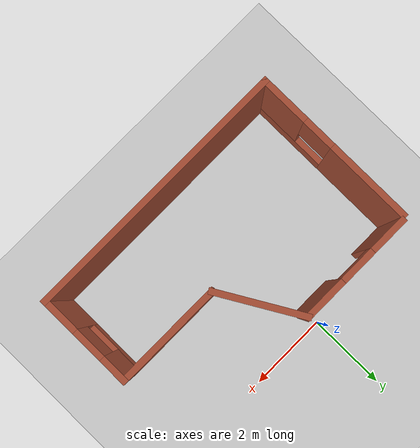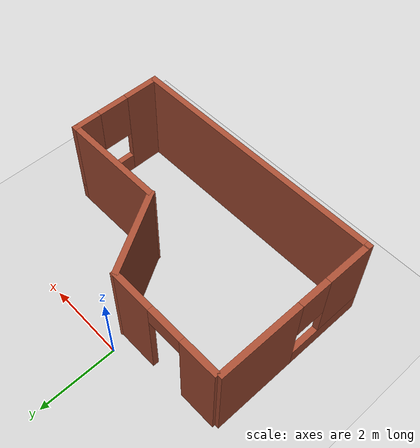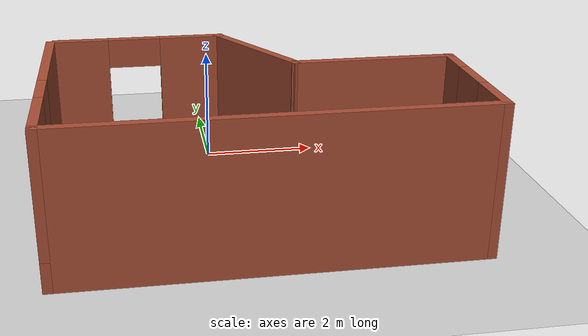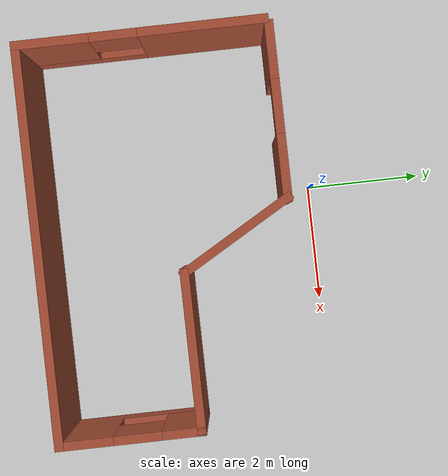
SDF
<sdf version="1.6">
 <world name="default">
  <light name="sun" type="directional">
   <pose>0 0 10 0 -0 0</pose>
   <diffuse>0.8 0.8 0.8 1</diffuse>
   <specular>0.2 0.2 0.2 1</specular>
   <attenuation>
    <range>1000</range>
    <constant>0.9</constant>
    <linear>0.01</linear>
    <quadratic>0.001</quadratic>
   </attenuation>
   <direction>-0.5 0.1 -0.9</direction>
  </light>
  <model name="ground_plane">
   <static>1</static>
   <link name="link">
    <collision name="collision">
     <geometry><plane><normal>0 0 1</normal><size>100 100</size></plane></geometry>
     <surface>
      <contact><collide_bitmask>65535</collide_bitmask></contact>
      <friction><ode><mu>100</mu><mu2>50</mu2></ode></friction>
     </surface>
    </collision>
    <visual name="visual">
     <cast_shadows>0</cast_shadows>
     <geometry><plane><normal>0 0 1</normal><size>100 100</size></plane></geometry>
     <material>
      <script><uri>file://media/materials/scripts/gazebo.material</uri><name>Gazebo/Grey</name></script>
     </material>
    </visual>
   </link>
  </model>
  <gravity>0 0 -9.8</gravity>
  <magnetic_field>6e-06 2.3e-05 -4.2e-05</magnetic_field>
  <atmosphere type="adiabatic"/>
  <physics name="default_physics" default="0" type="ode">
   <max_step_size>0.001</max_step_size>
   <real_time_factor>1</real_time_factor>
   <real_time_update_rate>1000</real_time_update_rate>
  </physics>
  <scene><ambient>0.4 0.4 0.4 1</ambient><background>0.7 0.7 0.7 1</background><shadows>1</shadows></scene>
  <audio><device>default</device></audio>
  <spherical_coordinates>
   <surface_model>EARTH_WGS84</surface_model>
   <latitude_deg>0</latitude_deg>
   <longitude_deg>0</longitude_deg>
   <elevation>0</elevation>
   <heading_deg>0</heading_deg>
  </spherical_coordinates>
  <model name="room">
   <pose>0.536972 -2.55151 0 0 -0 0</pose>
   <link name="Wall_0">
    <pose>-3.3 -0.048053 0 0 -0 -1.5708</pose>
    <visual name="Wall_0_Visual_0">
     <pose>-1.04294 0 1.25 0 -0 0</pose>
     <geometry><box><size>2.16412 0.15 2.5</size></box></geometry>
     <material>
      <script><uri>file://media/materials/scripts/gazebo.material</uri><name>Gazebo/Bricks</name></script>
      <ambient>1 1 1 1</ambient>
     </material>
     <meta><layer>0</layer></meta>
    </visual>
    <collision name="Wall_0_Collision_0">
     <geometry><box><size>2.16412 0.15 2.5</size></box></geometry>
     <pose>-1.04294 0 1.25 0 -0 0</pose>
    </collision>
    <visual name="Wall_0_Visual_1">
     <pose>1.08206 0 0.25 0 -0 0</pose>
     <geometry><box><size>2.08588 0.15 0.5</size></box></geometry>
     <material>
      <script><uri>file://media/materials/scripts/gazebo.material</uri><name>Gazebo/Bricks</name></script>
      <ambient>1 1 1 1</ambient>
     </material>
     <meta><layer>0</layer></meta>
    </visual>
    <collision name="Wall_0_Collision_1">
     <geometry><box><size>2.08588 0.15 0.5</size></box></geometry>
     <pose>1.08206 0 0.25 0 -0 0</pose>
    </collision>
    <visual name="Wall_0_Visual_2">
     <pose>1.48206 0 1.5 0 -0 0</pose>
     <geometry><box><size>1.28588 0.15 2</size></box></geometry>
     <material>
      <script><uri>file://media/materials/scripts/gazebo.material</uri><name>Gazebo/Bricks</name></script>
      <ambient>1 1 1 1</ambient>
     </material>
     <meta><layer>0</layer></meta>
    </visual>
    <collision name="Wall_0_Collision_2">
     <geometry><box><size>1.28588 0.15 2</size></box></geometry>
     <pose>1.48206 0 1.5 0 -0 0</pose>
    </collision>
    <visual name="Wall_0_Visual_3">
     <pose>0.439118 0 1.9 0 -0 0</pose>
     <geometry><box><size>0.8 0.15 1.2</size></box></geometry>
     <material>
      <script><uri>file://media/materials/scripts/gazebo.material</uri><name>Gazebo/Bricks</name></script>
      <ambient>1 1 1 1</ambient>
     </material>
     <meta><layer>0</layer></meta>
    </visual>
    <collision name="Wall_0_Collision_3">
     <geometry><box><size>0.8 0.15 1.2</size></box></geometry>
     <pose>0.439118 0 1.9 0 -0 0</pose>
    </collision>
   </link>
   <link name="Wall_1">
    <collision name="Wall_1_Collision">
     <geometry><box><size>6.75 0.15 2.5</size></box></geometry>
     <pose>0 0 1.25 0 -0 0</pose>
    </collision>
    <visual name="Wall_1_Visual">
     <pose>0 0 1.25 0 -0 0</pose>
     <geometry><box><size>6.75 0.15 2.5</size></box></geometry>
     <material>
      <script><uri>file://media/materials/scripts/gazebo.material</uri><name>Gazebo/Bricks</name></script>
      <ambient>1 1 1 1</ambient>
     </material>
     <meta><layer>0</layer></meta>
    </visual>
    <pose>0 -2.09805 0 0 -0 0</pose>
   </link>
   <link name="Wall_2">
    <pose>3.3 -0.923053 0 0 -0 1.5708</pose>
    <visual name="Wall_2_Visual_0">
     <pose>-0.762309 0 1.25 0 -0 0</pose>
     <geometry><box><size>0.975382 0.15 2.5</size></box></geometry>
     <material>
      <script><uri>file://media/materials/scripts/gazebo.material</uri><name>Gazebo/Bricks</name></script>
      <ambient>1 1 1 1</ambient>
     </material>
     <meta><layer>0</layer></meta>
    </visual>
    <collision name="Wall_2_Collision_0">
     <geometry><box><size>0.975382 0.15 2.5</size></box></geometry>
     <pose>-0.762309 0 1.25 0 -0 0</pose>
    </collision>
    <visual name="Wall_2_Visual_1">
     <pose>0.487691 0 0.25 0 -0 0</pose>
     <geometry><box><size>1.52462 0.15 0.5</size></box></geometry>
     <material>
      <script><uri>file://media/materials/scripts/gazebo.material</uri><name>Gazebo/Bricks</name></script>
      <ambient>1 1 1 1</ambient>
     </material>
     <meta><layer>0</layer></meta>
    </visual>
    <collision name="Wall_2_Collision_1">
     <geometry><box><size>1.52462 0.15 0.5</size></box></geometry>
     <pose>0.487691 0 0.25 0 -0 0</pose>
    </collision>
    <visual name="Wall_2_Visual_2">
     <pose>0.887691 0 1.5 0 -0 0</pose>
     <geometry><box><size>0.724618 0.15 2</size></box></geometry>
     <material>
      <script><uri>file://media/materials/scripts/gazebo.material</uri><name>Gazebo/Bricks</name></script>
      <ambient>1 1 1 1</ambient>
     </material>
     <meta><layer>0</layer></meta>
    </visual>
    <collision name="Wall_2_Collision_2">
     <geometry><box><size>0.724618 0.15 2</size></box></geometry>
     <pose>0.887691 0 1.5 0 -0 0</pose>
    </collision>
    <visual name="Wall_2_Visual_3">
     <pose>0.125382 0 1.9 0 -0 0</pose>
     <geometry><box><size>0.8 0.15 1.2</size></box></geometry>
     <material>
      <script><uri>file://media/materials/scripts/gazebo.material</uri><name>Gazebo/Bricks</name></script>
      <ambient>1 1 1 1</ambient>
     </material>
     <meta><layer>0</layer></meta>
    </visual>
    <collision name="Wall_2_Collision_3">
     <geometry><box><size>0.8 0.15 1.2</size></box></geometry>
     <pose>0.125382 0 1.9 0 -0 0</pose>
    </collision>
   </link>
   <link name="Wall_3">
    <collision name="Wall_3_Collision">
     <geometry><box><size>2.75 0.15 2.5</size></box></geometry>
     <pose>0 0 1.25 0 -0 0</pose>
    </collision>
    <visual name="Wall_3_Visual">
     <pose>0 0 1.25 0 -0 0</pose>
     <geometry><box><size>2.75 0.15 2.5</size></box></geometry>
     <material>
      <script><uri>file://media/materials/scripts/gazebo.material</uri><name>Gazebo/Bricks</name></script>
      <ambient>1 1 1 1</ambient>
     </material>
     <meta><layer>0</layer></meta>
    </visual>
    <pose>2 0.251947 0 0 -0 3.14159</pose>
   </link>
   <link name="Wall_6">
    <collision name="Wall_6_Collision">
     <geometry><box><size>2.25 0.15 2.5</size></box></geometry>
     <pose>0 0 1.25 0 -0 0</pose>
    </collision>
    <visual name="Wall_6_Visual">
     <pose>0 0 1.25 0 -0 0</pose>
     <geometry><box><size>2.25 0.15 2.5</size></box></geometry>
     <material>
      <script><uri>file://media/materials/scripts/gazebo.material</uri><name>Gazebo/Bricks</name></script>
      <ambient>1 1 1 1</ambient>
     </material>
     <meta><layer>0</layer></meta>
    </visual>
    <pose>0.175 1.16127 0 0 -0 2.0944</pose>
   </link>
   <link name="Wall_7">
    <pose>-1.775 2.0706 0 0 -0 3.14159</pose>
    <visual name="Wall_7_Visual_0">
     <pose>-0.934974 0 1.25 0 -0 0</pose>
     <geometry><box><size>1.13005 0.15 2.5</size></box></geometry>
     <material>
      <script><uri>file://media/materials/scripts/gazebo.material</uri><name>Gazebo/Bricks</name></script>
      <ambient>1 1 1 1</ambient>
     </material>
     <meta><layer>0</layer></meta>
    </visual>
    <collision name="Wall_7_Collision_0">
     <geometry><box><size>1.13005 0.15 2.5</size></box></geometry>
     <pose>-0.934974 0 1.25 0 -0 0</pose>
    </collision>
    <visual name="Wall_7_Visual_1">
     <pose>1.01503 0 1.25 0 -0 0</pose>
     <geometry><box><size>0.969947 0.15 2.5</size></box></geometry>
     <material>
      <script><uri>file://media/materials/scripts/gazebo.material</uri><name>Gazebo/Bricks</name></script>
      <ambient>1 1 1 1</ambient>
     </material>
     <meta><layer>0</layer></meta>
    </visual>
    <collision name="Wall_7_Collision_1">
     <geometry><box><size>0.969947 0.15 2.5</size></box></geometry>
     <pose>1.01503 0 1.25 0 -0 0</pose>
    </collision>
    <visual name="Wall_7_Visual_2">
     <pose>0.080053 0 2.25 0 -0 0</pose>
     <geometry><box><size>0.9 0.15 0.5</size></box></geometry>
     <material>
      <script><uri>file://media/materials/scripts/gazebo.material</uri><name>Gazebo/Bricks</name></script>
      <ambient>1 1 1 1</ambient>
     </material>
     <meta><layer>0</layer></meta>
    </visual>
    <collision name="Wall_7_Collision_2">
     <geometry><box><size>0.9 0.15 0.5</size></box></geometry>
     <pose>0.080053 0 2.25 0 -0 0</pose>
    </collision>
   </link>
   <static>1</static>
  </model>
 </world>
</sdf>
